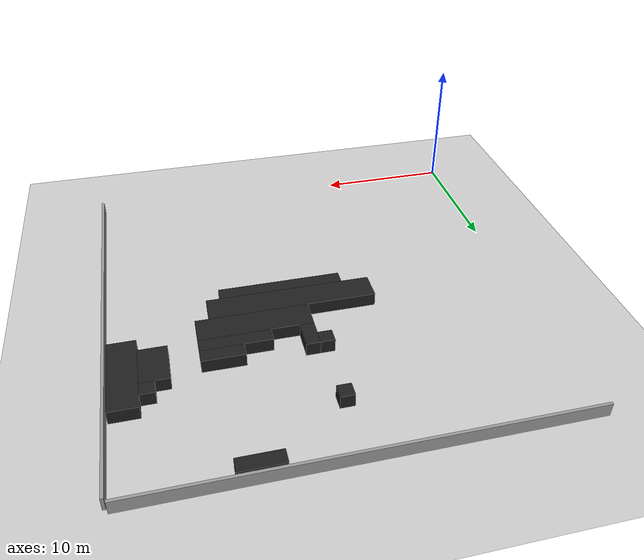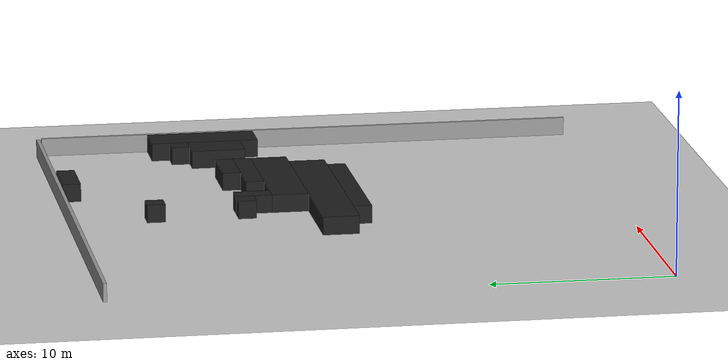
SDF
<sdf version="1.6">
 <world name="default">
  <model name="ground_plane">
   <static>1</static>
   <link name="link">
    <collision name="collision">
     <geometry><plane><normal>0 0 1</normal><size>100 100</size></plane></geometry>
     <surface><friction><ode><mu>100</mu><mu2>50</mu2></ode></friction></surface>
    </collision>
    <visual name="visual">
     <cast_shadows>0</cast_shadows>
     <geometry><plane><normal>0 0 1</normal><size>100 100</size></plane></geometry>
     <material>
      <script><uri>file://media/materials/scripts/gazebo.material</uri><name>Gazebo/Grey</name></script>
     </material>
    </visual>
   </link>
  </model>
  <model name="obstacle29">
   <link name="link_0">
    <inertial>
     <mass>1</mass>
     <inertia>
      <ixx>0.166667</ixx>
      <ixy>0</ixy>
      <ixz>0</ixz>
      <iyy>0.166667</iyy>
      <iyz>0</iyz>
      <izz>0.166667</izz>
     </inertia>
    </inertial>
    <visual name="visual">
     <geometry><box><size>9 1 1</size></box></geometry>
     <material>
      <lighting>1</lighting>
      <script><uri>file://media/materials/scripts/gazebo.material</uri><name>Gazebo/Black</name></script>
      <ambient>0 0 0 1</ambient>
      <diffuse>0 0 0 1</diffuse>
      <specular>0.01 0.01 0.01 1</specular>
      <emissive>0 0 0 1</emissive>
      <shader type="vertex"><normal_map>__default__</normal_map></shader>
     </material>
    </visual>
    <collision name="collision">
     <geometry><box><size>9 1 1</size></box></geometry>
     <surface>
      <friction>
       <ode><mu>5</mu><mu2>5</mu2><fdir1>0 0 0</fdir1><slip1>0</slip1><slip2>0</slip2></ode>
       <torsional>
        <coefficient>1</coefficient>
        <patch_radius>0</patch_radius>
        <surface_radius>0</surface_radius>
        <use_patch_radius>1</use_patch_radius>
        <ode><slip>0</slip></ode>
       </torsional>
      </friction>
      <bounce><restitution_coefficient>0</restitution_coefficient><threshold>1e+06</threshold></bounce>
      <contact>
       <collide_without_contact>0</collide_without_contact>
       <collide_without_contact_bitmask>1</collide_without_contact_bitmask>
       <collide_bitmask>1</collide_bitmask>
       <ode>
        <soft_cfm>0</soft_cfm>
        <soft_erp>0.2</soft_erp>
        <kp>1e+13</kp>
        <kd>1</kd>
        <max_vel>0.01</max_vel>
        <min_depth>0</min_depth>
       </ode>
       <bullet>
        <split_impulse>1</split_impulse>
        <split_impulse_penetration_threshold>-0.01</split_impulse_penetration_threshold>
        <soft_cfm>0</soft_cfm>
        <soft_erp>0.2</soft_erp>
        <kp>1e+13</kp>
        <kd>1</kd>
       </bullet>
      </contact>
     </surface>
    </collision>
   </link>
   <static>0</static>
   <pose>17.5 14.5 0.5 0 -0 0</pose>
  </model>
  <model name="obstacle31">
   <link name="link_0">
    <inertial>
     <mass>1</mass>
     <inertia>
      <ixx>0.166667</ixx>
      <ixy>0</ixy>
      <ixz>0</ixz>
      <iyy>0.166667</iyy>
      <iyz>0</iyz>
      <izz>0.166667</izz>
     </inertia>
    </inertial>
    <visual name="visual">
     <geometry><box><size>12 2 1</size></box></geometry>
     <material>
      <lighting>1</lighting>
      <script><uri>file://media/materials/scripts/gazebo.material</uri><name>Gazebo/Black</name></script>
      <ambient>0 0 0 1</ambient>
      <diffuse>0 0 0 1</diffuse>
      <specular>0.01 0.01 0.01 1</specular>
      <emissive>0 0 0 1</emissive>
      <shader type="vertex"><normal_map>__default__</normal_map></shader>
     </material>
    </visual>
    <collision name="collision">
     <geometry><box><size>12 2 1</size></box></geometry>
     <surface>
      <friction>
       <ode><mu>5</mu><mu2>5</mu2><fdir1>0 0 0</fdir1><slip1>0</slip1><slip2>0</slip2></ode>
       <torsional>
        <coefficient>1</coefficient>
        <patch_radius>0</patch_radius>
        <surface_radius>0</surface_radius>
        <use_patch_radius>1</use_patch_radius>
        <ode><slip>0</slip></ode>
       </torsional>
      </friction>
      <bounce><restitution_coefficient>0</restitution_coefficient><threshold>1e+06</threshold></bounce>
      <contact>
       <collide_without_contact>0</collide_without_contact>
       <collide_without_contact_bitmask>1</collide_without_contact_bitmask>
       <collide_bitmask>1</collide_bitmask>
       <ode>
        <soft_cfm>0</soft_cfm>
        <soft_erp>0.2</soft_erp>
        <kp>1e+13</kp>
        <kd>1</kd>
        <max_vel>0.01</max_vel>
        <min_depth>0</min_depth>
       </ode>
       <bullet>
        <split_impulse>1</split_impulse>
        <split_impulse_penetration_threshold>-0.01</split_impulse_penetration_threshold>
        <soft_cfm>0</soft_cfm>
        <soft_erp>0.2</soft_erp>
        <kp>1e+13</kp>
        <kd>1</kd>
       </bullet>
      </contact>
     </surface>
    </collision>
   </link>
   <static>0</static>
   <pose>17.0 16.0 0.5 0 -0 0</pose>
  </model>
  <model name="obstacle32">
   <link name="link_0">
    <inertial>
     <mass>1</mass>
     <inertia>
      <ixx>0.166667</ixx>
      <ixy>0</ixy>
      <ixz>0</ixz>
      <iyy>0.166667</iyy>
      <iyz>0</iyz>
      <izz>0.166667</izz>
     </inertia>
    </inertial>
    <visual name="visual">
     <geometry><box><size>8 2 1</size></box></geometry>
     <material>
      <lighting>1</lighting>
      <script><uri>file://media/materials/scripts/gazebo.material</uri><name>Gazebo/Black</name></script>
      <ambient>0 0 0 1</ambient>
      <diffuse>0 0 0 1</diffuse>
      <specular>0.01 0.01 0.01 1</specular>
      <emissive>0 0 0 1</emissive>
      <shader type="vertex"><normal_map>__default__</normal_map></shader>
     </material>
    </visual>
    <collision name="collision">
     <geometry><box><size>8 2 1</size></box></geometry>
     <surface>
      <friction>
       <ode><mu>5</mu><mu2>5</mu2><fdir1>0 0 0</fdir1><slip1>0</slip1><slip2>0</slip2></ode>
       <torsional>
        <coefficient>1</coefficient>
        <patch_radius>0</patch_radius>
        <surface_radius>0</surface_radius>
        <use_patch_radius>1</use_patch_radius>
        <ode><slip>0</slip></ode>
       </torsional>
      </friction>
      <bounce><restitution_coefficient>0</restitution_coefficient><threshold>1e+06</threshold></bounce>
      <contact>
       <collide_without_contact>0</collide_without_contact>
       <collide_without_contact_bitmask>1</collide_without_contact_bitmask>
       <collide_bitmask>1</collide_bitmask>
       <ode>
        <soft_cfm>0</soft_cfm>
        <soft_erp>0.2</soft_erp>
        <kp>1e+13</kp>
        <kd>1</kd>
        <max_vel>0.01</max_vel>
        <min_depth>0</min_depth>
       </ode>
       <bullet>
        <split_impulse>1</split_impulse>
        <split_impulse_penetration_threshold>-0.01</split_impulse_penetration_threshold>
        <soft_cfm>0</soft_cfm>
        <soft_erp>0.2</soft_erp>
        <kp>1e+13</kp>
        <kd>1</kd>
       </bullet>
      </contact>
     </surface>
    </collision>
   </link>
   <static>0</static>
   <pose>20.0 18.0 0.5 0 -0 0</pose>
  </model>
  <model name="obstacle33">
   <link name="link_0">
    <inertial>
     <mass>1</mass>
     <inertia>
      <ixx>0.166667</ixx>
      <ixy>0</ixy>
      <ixz>0</ixz>
      <iyy>0.166667</iyy>
      <iyz>0</iyz>
      <izz>0.166667</izz>
     </inertia>
    </inertial>
    <visual name="visual">
     <geometry><box><size>1 1 1</size></box></geometry>
     <material>
      <lighting>1</lighting>
      <script><uri>file://media/materials/scripts/gazebo.material</uri><name>Gazebo/Black</name></script>
      <ambient>0 0 0 1</ambient>
      <diffuse>0 0 0 1</diffuse>
      <specular>0.01 0.01 0.01 1</specular>
      <emissive>0 0 0 1</emissive>
      <shader type="vertex"><normal_map>__default__</normal_map></shader>
     </material>
    </visual>
    <collision name="collision">
     <geometry><box><size>1 1 1</size></box></geometry>
     <surface>
      <friction>
       <ode><mu>5</mu><mu2>5</mu2><fdir1>0 0 0</fdir1><slip1>0</slip1><slip2>0</slip2></ode>
       <torsional>
        <coefficient>1</coefficient>
        <patch_radius>0</patch_radius>
        <surface_radius>0</surface_radius>
        <use_patch_radius>1</use_patch_radius>
        <ode><slip>0</slip></ode>
       </torsional>
      </friction>
      <bounce><restitution_coefficient>0</restitution_coefficient><threshold>1e+06</threshold></bounce>
      <contact>
       <collide_without_contact>0</collide_without_contact>
       <collide_without_contact_bitmask>1</collide_without_contact_bitmask>
       <collide_bitmask>1</collide_bitmask>
       <ode>
        <soft_cfm>0</soft_cfm>
        <soft_erp>0.2</soft_erp>
        <kp>1e+13</kp>
        <kd>1</kd>
        <max_vel>0.01</max_vel>
        <min_depth>0</min_depth>
       </ode>
       <bullet>
        <split_impulse>1</split_impulse>
        <split_impulse_penetration_threshold>-0.01</split_impulse_penetration_threshold>
        <soft_cfm>0</soft_cfm>
        <soft_erp>0.2</soft_erp>
        <kp>1e+13</kp>
        <kd>1</kd>
       </bullet>
      </contact>
     </surface>
    </collision>
   </link>
   <static>0</static>
   <pose>15.5 20.5 0.5 0 -0 0</pose>
  </model>
  <model name="obstacle34">
   <link name="link_0">
    <inertial>
     <mass>1</mass>
     <inertia>
      <ixx>0.166667</ixx>
      <ixy>0</ixy>
      <ixz>0</ixz>
      <iyy>0.166667</iyy>
      <iyz>0</iyz>
      <izz>0.166667</izz>
     </inertia>
    </inertial>
    <visual name="visual">
     <geometry><box><size>1 2 1</size></box></geometry>
     <material>
      <lighting>1</lighting>
      <script><uri>file://media/materials/scripts/gazebo.material</uri><name>Gazebo/Black</name></script>
      <ambient>0 0 0 1</ambient>
      <diffuse>0 0 0 1</diffuse>
      <specular>0.01 0.01 0.01 1</specular>
      <emissive>0 0 0 1</emissive>
      <shader type="vertex"><normal_map>__default__</normal_map></shader>
     </material>
    </visual>
    <collision name="collision">
     <geometry><box><size>1 2 1</size></box></geometry>
     <surface>
      <friction>
       <ode><mu>5</mu><mu2>5</mu2><fdir1>0 0 0</fdir1><slip1>0</slip1><slip2>0</slip2></ode>
       <torsional>
        <coefficient>1</coefficient>
        <patch_radius>0</patch_radius>
        <surface_radius>0</surface_radius>
        <use_patch_radius>1</use_patch_radius>
        <ode><slip>0</slip></ode>
       </torsional>
      </friction>
      <bounce><restitution_coefficient>0</restitution_coefficient><threshold>1e+06</threshold></bounce>
      <contact>
       <collide_without_contact>0</collide_without_contact>
       <collide_without_contact_bitmask>1</collide_without_contact_bitmask>
       <collide_bitmask>1</collide_bitmask>
       <ode>
        <soft_cfm>0</soft_cfm>
        <soft_erp>0.2</soft_erp>
        <kp>1e+13</kp>
        <kd>1</kd>
        <max_vel>0.01</max_vel>
        <min_depth>0</min_depth>
       </ode>
       <bullet>
        <split_impulse>1</split_impulse>
        <split_impulse_penetration_threshold>-0.01</split_impulse_penetration_threshold>
        <soft_cfm>0</soft_cfm>
        <soft_erp>0.2</soft_erp>
        <kp>1e+13</kp>
        <kd>1</kd>
       </bullet>
      </contact>
     </surface>
    </collision>
   </link>
   <static>0</static>
   <pose>16.5 20.0 0.5 0 -0 0</pose>
  </model>
  <model name="obstacle35">
   <link name="link_0">
    <inertial>
     <mass>1</mass>
     <inertia>
      <ixx>0.166667</ixx>
      <ixy>0</ixy>
      <ixz>0</ixz>
      <iyy>0.166667</iyy>
      <iyz>0</iyz>
      <izz>0.166667</izz>
     </inertia>
    </inertial>
    <visual name="visual">
     <geometry><box><size>5 1 1</size></box></geometry>
     <material>
      <lighting>1</lighting>
      <script><uri>file://media/materials/scripts/gazebo.material</uri><name>Gazebo/Black</name></script>
      <ambient>0 0 0 1</ambient>
      <diffuse>0 0 0 1</diffuse>
      <specular>0.01 0.01 0.01 1</specular>
      <emissive>0 0 0 1</emissive>
      <shader type="vertex"><normal_map>__default__</normal_map></shader>
     </material>
    </visual>
    <collision name="collision">
     <geometry><box><size>5 1 1</size></box></geometry>
     <surface>
      <friction>
       <ode><mu>5</mu><mu2>5</mu2><fdir1>0 0 0</fdir1><slip1>0</slip1><slip2>0</slip2></ode>
       <torsional>
        <coefficient>1</coefficient>
        <patch_radius>0</patch_radius>
        <surface_radius>0</surface_radius>
        <use_patch_radius>1</use_patch_radius>
        <ode><slip>0</slip></ode>
       </torsional>
      </friction>
      <bounce><restitution_coefficient>0</restitution_coefficient><threshold>1e+06</threshold></bounce>
      <contact>
       <collide_without_contact>0</collide_without_contact>
       <collide_without_contact_bitmask>1</collide_without_contact_bitmask>
       <collide_bitmask>1</collide_bitmask>
       <ode>
        <soft_cfm>0</soft_cfm>
        <soft_erp>0.2</soft_erp>
        <kp>1e+13</kp>
        <kd>1</kd>
        <max_vel>0.01</max_vel>
        <min_depth>0</min_depth>
       </ode>
       <bullet>
        <split_impulse>1</split_impulse>
        <split_impulse_penetration_threshold>-0.01</split_impulse_penetration_threshold>
        <soft_cfm>0</soft_cfm>
        <soft_erp>0.2</soft_erp>
        <kp>1e+13</kp>
        <kd>1</kd>
       </bullet>
      </contact>
     </surface>
    </collision>
   </link>
   <static>0</static>
   <pose>21.5 19.5 0.5 0 -0 0</pose>
  </model>
  <model name="obstacle36">
   <link name="link_0">
    <inertial>
     <mass>1</mass>
     <inertia>
      <ixx>0.166667</ixx>
      <ixy>0</ixy>
      <ixz>0</ixz>
      <iyy>0.166667</iyy>
      <iyz>0</iyz>
      <izz>0.166667</izz>
     </inertia>
    </inertial>
    <visual name="visual">
     <geometry><box><size>3 1 1</size></box></geometry>
     <material>
      <lighting>1</lighting>
      <script><uri>file://media/materials/scripts/gazebo.material</uri><name>Gazebo/Black</name></script>
      <ambient>0 0 0 1</ambient>
      <diffuse>0 0 0 1</diffuse>
      <specular>0.01 0.01 0.01 1</specular>
      <emissive>0 0 0 1</emissive>
      <shader type="vertex"><normal_map>__default__</normal_map></shader>
     </material>
    </visual>
    <collision name="collision">
     <geometry><box><size>3 1 1</size></box></geometry>
     <surface>
      <friction>
       <ode><mu>5</mu><mu2>5</mu2><fdir1>0 0 0</fdir1><slip1>0</slip1><slip2>0</slip2></ode>
       <torsional>
        <coefficient>1</coefficient>
        <patch_radius>0</patch_radius>
        <surface_radius>0</surface_radius>
        <use_patch_radius>1</use_patch_radius>
        <ode><slip>0</slip></ode>
       </torsional>
      </friction>
      <bounce><restitution_coefficient>0</restitution_coefficient><threshold>1e+06</threshold></bounce>
      <contact>
       <collide_without_contact>0</collide_without_contact>
       <collide_without_contact_bitmask>1</collide_without_contact_bitmask>
       <collide_bitmask>1</collide_bitmask>
       <ode>
        <soft_cfm>0</soft_cfm>
        <soft_erp>0.2</soft_erp>
        <kp>1e+13</kp>
        <kd>1</kd>
        <max_vel>0.01</max_vel>
        <min_depth>0</min_depth>
       </ode>
       <bullet>
        <split_impulse>1</split_impulse>
        <split_impulse_penetration_threshold>-0.01</split_impulse_penetration_threshold>
        <soft_cfm>0</soft_cfm>
        <soft_erp>0.2</soft_erp>
        <kp>1e+13</kp>
        <kd>1</kd>
       </bullet>
      </contact>
     </surface>
    </collision>
   </link>
   <static>0</static>
   <pose>22.5 20.5 0.5 0 -0 0</pose>
  </model>
  <model name="obstacle39">
   <link name="link_0">
    <inertial>
     <mass>1</mass>
     <inertia>
      <ixx>0.166667</ixx>
      <ixy>0</ixy>
      <ixz>0</ixz>
      <iyy>0.166667</iyy>
      <iyz>0</iyz>
      <izz>0.166667</izz>
     </inertia>
    </inertial>
    <visual name="visual">
     <geometry><box><size>1 1 1</size></box></geometry>
     <material>
      <lighting>1</lighting>
      <script><uri>file://media/materials/scripts/gazebo.material</uri><name>Gazebo/Black</name></script>
      <ambient>0 0 0 1</ambient>
      <diffuse>0 0 0 1</diffuse>
      <specular>0.01 0.01 0.01 1</specular>
      <emissive>0 0 0 1</emissive>
      <shader type="vertex"><normal_map>__default__</normal_map></shader>
     </material>
    </visual>
    <collision name="collision">
     <geometry><box><size>1 1 1</size></box></geometry>
     <surface>
      <friction>
       <ode><mu>5</mu><mu2>5</mu2><fdir1>0 0 0</fdir1><slip1>0</slip1><slip2>0</slip2></ode>
       <torsional>
        <coefficient>1</coefficient>
        <patch_radius>0</patch_radius>
        <surface_radius>0</surface_radius>
        <use_patch_radius>1</use_patch_radius>
        <ode><slip>0</slip></ode>
       </torsional>
      </friction>
      <bounce><restitution_coefficient>0</restitution_coefficient><threshold>1e+06</threshold></bounce>
      <contact>
       <collide_without_contact>0</collide_without_contact>
       <collide_without_contact_bitmask>1</collide_without_contact_bitmask>
       <collide_bitmask>1</collide_bitmask>
       <ode>
        <soft_cfm>0</soft_cfm>
        <soft_erp>0.2</soft_erp>
        <kp>1e+13</kp>
        <kd>1</kd>
        <max_vel>0.01</max_vel>
        <min_depth>0</min_depth>
       </ode>
       <bullet>
        <split_impulse>1</split_impulse>
        <split_impulse_penetration_threshold>-0.01</split_impulse_penetration_threshold>
        <soft_cfm>0</soft_cfm>
        <soft_erp>0.2</soft_erp>
        <kp>1e+13</kp>
        <kd>1</kd>
       </bullet>
      </contact>
     </surface>
    </collision>
   </link>
   <static>0</static>
   <pose>15.5 25.5 0.5 0 -0 0</pose>
  </model>
  <model name="obstacle40">
   <link name="link_0">
    <inertial>
     <mass>1</mass>
     <inertia>
      <ixx>0.166667</ixx>
      <ixy>0</ixy>
      <ixz>0</ixz>
      <iyy>0.166667</iyy>
      <iyz>0</iyz>
      <izz>0.166667</izz>
     </inertia>
    </inertial>
    <visual name="visual">
     <geometry><box><size>3 1 1</size></box></geometry>
     <material>
      <lighting>1</lighting>
      <script><uri>file://media/materials/scripts/gazebo.material</uri><name>Gazebo/Black</name></script>
      <ambient>0 0 0 1</ambient>
      <diffuse>0 0 0 1</diffuse>
      <specular>0.01 0.01 0.01 1</specular>
      <emissive>0 0 0 1</emissive>
      <shader type="vertex"><normal_map>__default__</normal_map></shader>
     </material>
    </visual>
    <collision name="collision">
     <geometry><box><size>3 1 1</size></box></geometry>
     <surface>
      <friction>
       <ode><mu>5</mu><mu2>5</mu2><fdir1>0 0 0</fdir1><slip1>0</slip1><slip2>0</slip2></ode>
       <torsional>
        <coefficient>1</coefficient>
        <patch_radius>0</patch_radius>
        <surface_radius>0</surface_radius>
        <use_patch_radius>1</use_patch_radius>
        <ode><slip>0</slip></ode>
       </torsional>
      </friction>
      <bounce><restitution_coefficient>0</restitution_coefficient><threshold>1e+06</threshold></bounce>
      <contact>
       <collide_without_contact>0</collide_without_contact>
       <collide_without_contact_bitmask>1</collide_without_contact_bitmask>
       <collide_bitmask>1</collide_bitmask>
       <ode>
        <soft_cfm>0</soft_cfm>
        <soft_erp>0.2</soft_erp>
        <kp>1e+13</kp>
        <kd>1</kd>
        <max_vel>0.01</max_vel>
        <min_depth>0</min_depth>
       </ode>
       <bullet>
        <split_impulse>1</split_impulse>
        <split_impulse_penetration_threshold>-0.01</split_impulse_penetration_threshold>
        <soft_cfm>0</soft_cfm>
        <soft_erp>0.2</soft_erp>
        <kp>1e+13</kp>
        <kd>1</kd>
       </bullet>
      </contact>
     </surface>
    </collision>
   </link>
   <static>0</static>
   <pose>21.5 29.5 0.5 0 -0 0</pose>
  </model>
  <model name="obstacle44">
   <link name="link_0">
    <inertial>
     <mass>1</mass>
     <inertia>
      <ixx>0.166667</ixx>
      <ixy>0</ixy>
      <ixz>0</ixz>
      <iyy>0.166667</iyy>
      <iyz>0</iyz>
      <izz>0.166667</izz>
     </inertia>
    </inertial>
    <visual name="visual">
     <geometry><box><size>2 3 1</size></box></geometry>
     <material>
      <lighting>1</lighting>
      <script><uri>file://media/materials/scripts/gazebo.material</uri><name>Gazebo/Black</name></script>
      <ambient>0 0 0 1</ambient>
      <diffuse>0 0 0 1</diffuse>
      <specular>0.01 0.01 0.01 1</specular>
      <emissive>0 0 0 1</emissive>
      <shader type="vertex"><normal_map>__default__</normal_map></shader>
     </material>
    </visual>
    <collision name="collision">
     <geometry><box><size>2 3 1</size></box></geometry>
     <surface>
      <friction>
       <ode><mu>5</mu><mu2>5</mu2><fdir1>0 0 0</fdir1><slip1>0</slip1><slip2>0</slip2></ode>
       <torsional>
        <coefficient>1</coefficient>
        <patch_radius>0</patch_radius>
        <surface_radius>0</surface_radius>
        <use_patch_radius>1</use_patch_radius>
        <ode><slip>0</slip></ode>
       </torsional>
      </friction>
      <bounce><restitution_coefficient>0</restitution_coefficient><threshold>1e+06</threshold></bounce>
      <contact>
       <collide_without_contact>0</collide_without_contact>
       <collide_without_contact_bitmask>1</collide_without_contact_bitmask>
       <collide_bitmask>1</collide_bitmask>
       <ode>
        <soft_cfm>0</soft_cfm>
        <soft_erp>0.2</soft_erp>
        <kp>1e+13</kp>
        <kd>1</kd>
        <max_vel>0.01</max_vel>
        <min_depth>0</min_depth>
       </ode>
       <bullet>
        <split_impulse>1</split_impulse>
        <split_impulse_penetration_threshold>-0.01</split_impulse_penetration_threshold>
        <soft_cfm>0</soft_cfm>
        <soft_erp>0.2</soft_erp>
        <kp>1e+13</kp>
        <kd>1</kd>
       </bullet>
      </contact>
     </surface>
    </collision>
   </link>
   <static>0</static>
   <pose>27.0 20.5 0.5 0 -0 0</pose>
  </model>
  <model name="obstacle45">
   <link name="link_0">
    <inertial>
     <mass>1</mass>
     <inertia>
      <ixx>0.166667</ixx>
      <ixy>0</ixy>
      <ixz>0</ixz>
      <iyy>0.166667</iyy>
      <iyz>0</iyz>
      <izz>0.166667</izz>
     </inertia>
    </inertial>
    <visual name="visual">
     <geometry><box><size>2 6 1</size></box></geometry>
     <material>
      <lighting>1</lighting>
      <script><uri>file://media/materials/scripts/gazebo.material</uri><name>Gazebo/Black</name></script>
      <ambient>0 0 0 1</ambient>
      <diffuse>0 0 0 1</diffuse>
      <specular>0.01 0.01 0.01 1</specular>
      <emissive>0 0 0 1</emissive>
      <shader type="vertex"><normal_map>__default__</normal_map></shader>
     </material>
    </visual>
    <collision name="collision">
     <geometry><box><size>2 6 1</size></box></geometry>
     <surface>
      <friction>
       <ode><mu>5</mu><mu2>5</mu2><fdir1>0 0 0</fdir1><slip1>0</slip1><slip2>0</slip2></ode>
       <torsional>
        <coefficient>1</coefficient>
        <patch_radius>0</patch_radius>
        <surface_radius>0</surface_radius>
        <use_patch_radius>1</use_patch_radius>
        <ode><slip>0</slip></ode>
       </torsional>
      </friction>
      <bounce><restitution_coefficient>0</restitution_coefficient><threshold>1e+06</threshold></bounce>
      <contact>
       <collide_without_contact>0</collide_without_contact>
       <collide_without_contact_bitmask>1</collide_without_contact_bitmask>
       <collide_bitmask>1</collide_bitmask>
       <ode>
        <soft_cfm>0</soft_cfm>
        <soft_erp>0.2</soft_erp>
        <kp>1e+13</kp>
        <kd>1</kd>
        <max_vel>0.01</max_vel>
        <min_depth>0</min_depth>
       </ode>
       <bullet>
        <split_impulse>1</split_impulse>
        <split_impulse_penetration_threshold>-0.01</split_impulse_penetration_threshold>
        <soft_cfm>0</soft_cfm>
        <soft_erp>0.2</soft_erp>
        <kp>1e+13</kp>
        <kd>1</kd>
       </bullet>
      </contact>
     </surface>
    </collision>
   </link>
   <static>0</static>
   <pose>29.0 21.0 0.5 0 -0 0</pose>
  </model>
  <model name="obstacle46">
   <link name="link_0">
    <inertial>
     <mass>1</mass>
     <inertia>
      <ixx>0.166667</ixx>
      <ixy>0</ixy>
      <ixz>0</ixz>
      <iyy>0.166667</iyy>
      <iyz>0</iyz>
      <izz>0.166667</izz>
     </inertia>
    </inertial>
    <visual name="visual">
     <geometry><box><size>1 1 1</size></box></geometry>
     <material>
      <lighting>1</lighting>
      <script><uri>file://media/materials/scripts/gazebo.material</uri><name>Gazebo/Black</name></script>
      <ambient>0 0 0 1</ambient>
      <diffuse>0 0 0 1</diffuse>
      <specular>0.01 0.01 0.01 1</specular>
      <emissive>0 0 0 1</emissive>
      <shader type="vertex"><normal_map>__default__</normal_map></shader>
     </material>
    </visual>
    <collision name="collision">
     <geometry><box><size>1 1 1</size></box></geometry>
     <surface>
      <friction>
       <ode><mu>5</mu><mu2>5</mu2><fdir1>0 0 0</fdir1><slip1>0</slip1><slip2>0</slip2></ode>
       <torsional>
        <coefficient>1</coefficient>
        <patch_radius>0</patch_radius>
        <surface_radius>0</surface_radius>
        <use_patch_radius>1</use_patch_radius>
        <ode><slip>0</slip></ode>
       </torsional>
      </friction>
      <bounce><restitution_coefficient>0</restitution_coefficient><threshold>1e+06</threshold></bounce>
      <contact>
       <collide_without_contact>0</collide_without_contact>
       <collide_without_contact_bitmask>1</collide_without_contact_bitmask>
       <collide_bitmask>1</collide_bitmask>
       <ode>
        <soft_cfm>0</soft_cfm>
        <soft_erp>0.2</soft_erp>
        <kp>1e+13</kp>
        <kd>1</kd>
        <max_vel>0.01</max_vel>
        <min_depth>0</min_depth>
       </ode>
       <bullet>
        <split_impulse>1</split_impulse>
        <split_impulse_penetration_threshold>-0.01</split_impulse_penetration_threshold>
        <soft_cfm>0</soft_cfm>
        <soft_erp>0.2</soft_erp>
        <kp>1e+13</kp>
        <kd>1</kd>
       </bullet>
      </contact>
     </surface>
    </collision>
   </link>
   <static>0</static>
   <pose>27.5 22.5 0.5 0 -0 0</pose>
  </model>
  <model name="boundry3">
   <static>1</static>
   <link name="link">
    <pose>0 0 0.5 0 -0 0</pose>
    <collision name="collision"><geometry><box><size>30.0 0.2 1.0</size></box></geometry></collision>
    <visual name="visual">
     <cast_shadows>0</cast_shadows>
     <geometry><box><size>30.0 0.2 1.0</size></box></geometry>
     <material>
      <script>
       <uri>model://grey_wall/materials/scripts</uri>
       <uri>model://grey_wall/materials/textures</uri>
       <name>vrc/grey_wall</name>
      </script>
     </material>
    </visual>
   </link>
   <pose>15.0 30.2 0 0 -0 0</pose>
  </model>
  <model name="boundry4">
   <static>1</static>
   <link name="link">
    <pose>0 0 0.5 0 -0 0</pose>
    <collision name="collision"><geometry><box><size>0.2 30.0 1.0</size></box></geometry></collision>
    <visual name="visual">
     <cast_shadows>0</cast_shadows>
     <geometry><box><size>0.2 30.0 1.0</size></box></geometry>
     <material>
      <script>
       <uri>model://grey_wall/materials/scripts</uri>
       <uri>model://grey_wall/materials/textures</uri>
       <name>vrc/grey_wall</name>
      </script>
     </material>
    </visual>
   </link>
   <pose>30.2 15.0 0 0 -0 0</pose>
  </model>
 </world>
</sdf>
